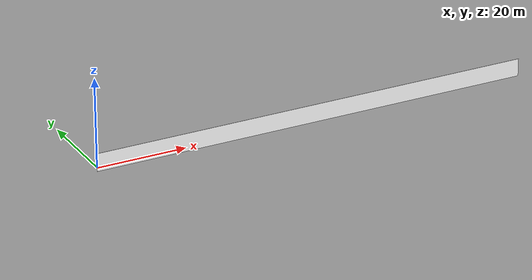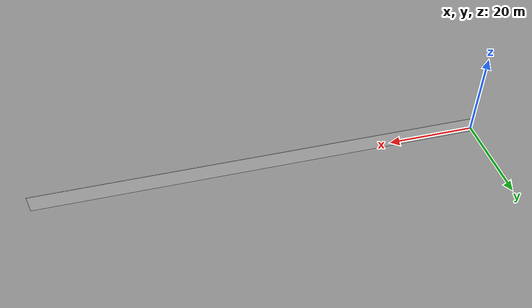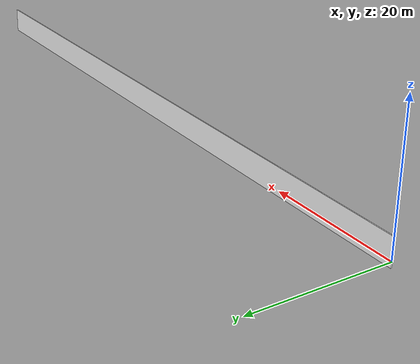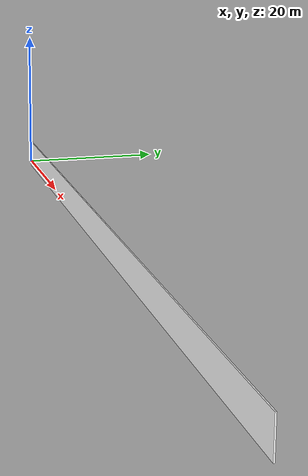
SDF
<?xml version='1.0'?>
<sdf version='1.6'>
 <model name='brick1'>
  <pose frame=''>50 0 0 0 -0 0</pose>
  <link name='Wall_0'>
  <collision name='Wall_0_Collision'>
  <geometry>
   <box>
    <size>100 0.15 4</size>
   </box>
   </geometry>
   <pose frame=''>0 0 1.25 0 -0 0</pose>
   </collision>
  <visual name='Wall_0_Visual'>
   <pose frame=''>0 0 1.25 0 -0 0</pose>
   <geometry>
	<box>
	 <size>100 0.15 4</size>
	</box>
   </geometry>
   <material>
	<script>
	<uri>model://floor/materials/scripts</uri>
	<uri>model://floor/materials/textures</uri>
   <name>floor</name>
   </script>
	<ambient>1 1 1 1</ambient>
   </material>
   <meta>
	<layer>0</layer>
	</meta>
	</visual>
  <pose frame=''>-0 0 0 0 -0 0</pose>
</link>
<static>1</static>
</model>
</sdf>
